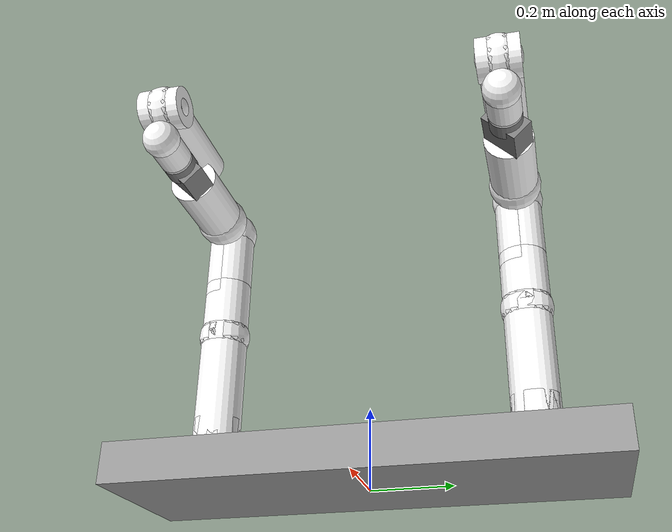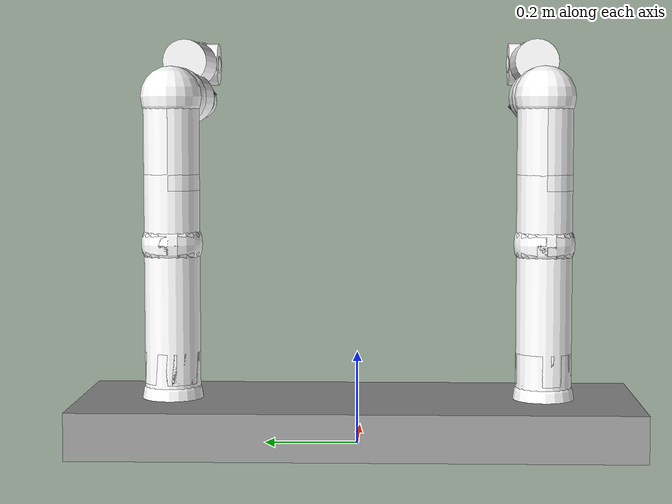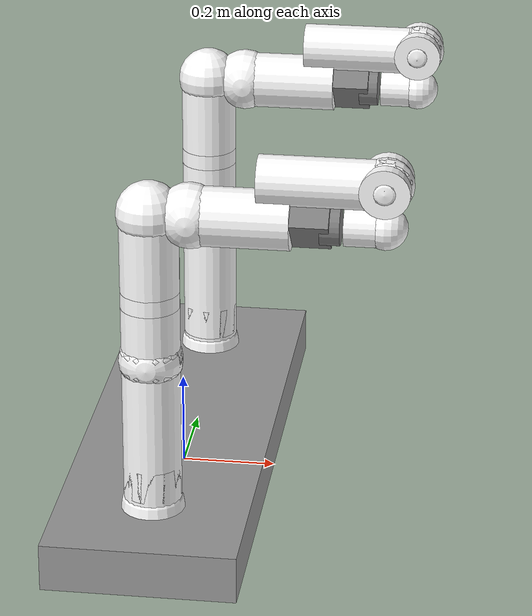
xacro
<?xml version="1.0" encoding="utf-8"?>
<robot xmlns:xacro="http://www.ros.org/wiki/xacro" name="dual_panda">

  <!-- 0. 基础宏定义 (物理修正版) -->
  <xacro:macro name="cylinder_inertial" params="radius length mass *origin">
    <inertial>
      <mass value="${mass}" />
      <xacro:insert_block name="origin" />
      <inertia ixx="${0.0833333 * mass * (3 * radius * radius + length * length)}" ixy="0.0" ixz="0.0"
               iyy="${0.0833333 * mass * (3 * radius * radius + length * length)}" iyz="0.0"
               izz="${0.5 * mass * radius * radius}" />
    </inertial>
  </xacro:macro>

  <xacro:macro name="box_inertial" params="x y z mass *origin">
    <inertial>
      <mass value="${mass}" />
      <xacro:insert_block name="origin" />
      <inertia ixx="${0.0833333 * mass * (y*y + z*z)}" ixy="0.0" ixz="0.0"
               iyy="${0.0833333 * mass * (x*x + z*z)}" iyz="0.0"
               izz="${0.0833333 * mass * (x*x + y*y)}" />
    </inertial>
  </xacro:macro>

  <!-- [新增] 球体惯性宏，用于关节球 -->
  <xacro:macro name="sphere_inertial" params="radius mass *origin">
    <inertial>
      <mass value="${mass}" />
      <xacro:insert_block name="origin" />
      <inertia ixx="${0.4 * mass * radius * radius}" ixy="0.0" ixz="0.0"
               iyy="${0.4 * mass * radius * radius}" iyz="0.0"
               izz="${0.4 * mass * radius * radius}" />
    </inertial>
  </xacro:macro>

  <!-- 视觉宏：包含圆柱体体身 + 关节处的球体 -->
  <xacro:macro name="visual_link_with_joint" params="radius length origin_xyz:='0 0 0' origin_rpy:='0 0 0'">
     <!-- Link 本体 (圆柱) -->
    <visual>
      <origin xyz="${origin_xyz}" rpy="${origin_rpy}"/>
      <geometry><cylinder radius="${radius}" length="${length}"/></geometry>
      <material name="White"><color rgba="1 1 1 1"/></material>
    </visual>
    <!-- 关节球 (补缝) -->
    <visual>
      <origin xyz="0 0 0" rpy="0 0 0"/>
      <geometry><sphere radius="${radius * 1.1}"/></geometry>
      <material name="White"/>
    </visual>
  </xacro:macro>

  <!-- [修正] 碰撞体宏：只保留圆柱，不包含关节球，防止运动卡死 -->
  <xacro:macro name="simple_collision" params="radius length origin_xyz:='0 0 0' origin_rpy:='0 0 0'">
    <collision>
      <origin xyz="${origin_xyz}" rpy="${origin_rpy}"/>
      <!-- 半径稍微缩小一点点，避免紧贴碰撞 -->
      <geometry><cylinder radius="${radius * 0.9}" length="${length}"/></geometry>
    </collision>
  </xacro:macro>

  <!-- 1. 机械臂宏 -->
  <xacro:macro name="panda_arm" params="arm_id connected_to xyz:='0 0 0' rpy:='0 0 0'">
    <!-- Base Link 固定关节 -->
    <joint name="${arm_id}_joint_base" type="fixed">
      <parent link="${connected_to}"/>
      <child link="${arm_id}_link0"/>
      <origin rpy="${rpy}" xyz="${xyz}"/>
    </joint>

    <link name="${arm_id}_link0">
      <xacro:visual_link_with_joint radius="0.06" length="0.1" origin_xyz="0 0 0.05" origin_rpy="0 0 0"/>
      <xacro:simple_collision radius="0.06" length="0.1" origin_xyz="0 0 0.05"/>
      <xacro:cylinder_inertial radius="0.06" length="0.1" mass="3.06"><origin xyz="0 0 0.05" rpy="0 0 0"/></xacro:cylinder_inertial>
    </link>
    <gazebo reference="${arm_id}_link0"><material>Gazebo/White</material></gazebo>

    <joint name="${arm_id}_joint1" type="revolute">
      <origin rpy="0 0 0" xyz="0 0 0.333"/> <parent link="${arm_id}_link0"/> <child link="${arm_id}_link1"/> <axis xyz="0 0 1"/>
      <limit effort="87" lower="-2.8973" upper="2.8973" velocity="2.1750"/> <dynamics damping="1.0" friction="0.5"/>
    </joint>
    <link name="${arm_id}_link1">
      <xacro:visual_link_with_joint radius="0.06" length="0.3" origin_xyz="0 0 -0.15"/>
      <xacro:simple_collision radius="0.06" length="0.3" origin_xyz="0 0 -0.15"/>
      <xacro:cylinder_inertial radius="0.06" length="0.3" mass="2.34"><origin xyz="0 0 -0.15" rpy="0 0 0"/></xacro:cylinder_inertial>
    </link>
    <gazebo reference="${arm_id}_link1"><material>Gazebo/White</material></gazebo>

    <joint name="${arm_id}_joint2" type="revolute">
      <origin rpy="${-pi/2} 0 0" xyz="0 0 0"/> <parent link="${arm_id}_link1"/> <child link="${arm_id}_link2"/> <axis xyz="0 0 1"/>
      <limit effort="87" lower="-1.7628" upper="1.7628" velocity="2.1750"/> <dynamics damping="1.0" friction="0.5"/>
    </joint>
    <link name="${arm_id}_link2">
      <xacro:visual_link_with_joint radius="0.06" length="0.35" origin_xyz="0 -0.15 0" origin_rpy="-1.57 0 0"/>
      <xacro:simple_collision radius="0.06" length="0.35" origin_xyz="0 -0.15 0" origin_rpy="-1.57 0 0"/>
      <xacro:cylinder_inertial radius="0.06" length="0.35" mass="2.36"><origin xyz="0 -0.15 0" rpy="-1.57 0 0"/></xacro:cylinder_inertial>
    </link>
    <gazebo reference="${arm_id}_link2"><material>Gazebo/White</material></gazebo>

    <joint name="${arm_id}_joint3" type="revolute">
      <origin rpy="${pi/2} 0 0" xyz="0 -0.316 0"/> <parent link="${arm_id}_link2"/> <child link="${arm_id}_link3"/> <axis xyz="0 0 1"/>
      <limit effort="87" lower="-2.8973" upper="2.8973" velocity="2.1750"/> <dynamics damping="1.0" friction="0.5"/>
    </joint>
    <link name="${arm_id}_link3">
       <xacro:visual_link_with_joint radius="0.06" length="0.2" origin_xyz="0 0 -0.1"/>
       <xacro:simple_collision radius="0.06" length="0.2" origin_xyz="0 0 -0.1"/>
      <xacro:cylinder_inertial radius="0.06" length="0.2" mass="2.38"><origin xyz="0 0 -0.1" rpy="0 0 0"/></xacro:cylinder_inertial>
    </link>
    <gazebo reference="${arm_id}_link3"><material>Gazebo/White</material></gazebo>

    <joint name="${arm_id}_joint4" type="revolute">
      <origin rpy="${pi/2} 0 0" xyz="0.0825 0 0"/> <parent link="${arm_id}_link3"/> <child link="${arm_id}_link4"/> <axis xyz="0 0 1"/>
      <limit effort="87" lower="-3.0718" upper="-0.0698" velocity="2.1750"/> <dynamics damping="1.0" friction="0.5"/>
    </joint>
    <link name="${arm_id}_link4">
       <xacro:visual_link_with_joint radius="0.06" length="0.2" origin_xyz="0 0.1 0" origin_rpy="1.57 0 0"/>
       <xacro:simple_collision radius="0.06" length="0.2" origin_xyz="0 0.1 0" origin_rpy="1.57 0 0"/>
      <xacro:cylinder_inertial radius="0.06" length="0.2" mass="2.43"><origin xyz="0 0 0" rpy="0 0 0"/></xacro:cylinder_inertial>
    </link>
    <gazebo reference="${arm_id}_link4"><material>Gazebo/White</material></gazebo>

    <joint name="${arm_id}_joint5" type="revolute">
      <origin rpy="${-pi/2} 0 0" xyz="-0.0825 0.384 0"/> <parent link="${arm_id}_link4"/> <child link="${arm_id}_link5"/> <axis xyz="0 0 1"/>
      <limit effort="12" lower="-2.8973" upper="2.8973" velocity="2.6100"/> <dynamics damping="1.0" friction="0.5"/>
    </joint>
    <link name="${arm_id}_link5">
       <xacro:visual_link_with_joint radius="0.05" length="0.25" origin_xyz="0 0 -0.125"/>
       <xacro:simple_collision radius="0.05" length="0.25" origin_xyz="0 0 -0.125"/>
      <xacro:cylinder_inertial radius="0.05" length="0.25" mass="3.5"><origin xyz="0 0 -0.125" rpy="0 0 0"/></xacro:cylinder_inertial>
    </link>
    <gazebo reference="${arm_id}_link5"><material>Gazebo/White</material></gazebo>

    <joint name="${arm_id}_joint6" type="revolute">
      <origin rpy="${pi/2} 0 0" xyz="0 0 0"/> <parent link="${arm_id}_link5"/> <child link="${arm_id}_link6"/> <axis xyz="0 0 1"/>
      <limit effort="12" lower="-0.0175" upper="3.7525" velocity="2.6100"/> <dynamics damping="0.5" friction="0.5"/>
    </joint>
    <link name="${arm_id}_link6">
       <xacro:visual_link_with_joint radius="0.05" length="0.1" origin_xyz="0 0 0"/>
       <xacro:simple_collision radius="0.05" length="0.1" origin_xyz="0 0 0"/>
      <xacro:cylinder_inertial radius="0.05" length="0.1" mass="1.47"><origin xyz="0 0 0" rpy="0 0 0"/></xacro:cylinder_inertial>
    </link>
    <gazebo reference="${arm_id}_link6"><material>Gazebo/White</material></gazebo>

    <joint name="${arm_id}_joint7" type="revolute">
      <origin rpy="${pi/2} 0 0" xyz="0.088 0 0"/> <parent link="${arm_id}_link6"/> <child link="${arm_id}_link7"/> <axis xyz="0 0 1"/>
      <limit effort="12" lower="-2.8973" upper="2.8973" velocity="2.6100"/> <dynamics damping="0.5" friction="0.5"/>
    </joint>
    <link name="${arm_id}_link7">
       <xacro:visual_link_with_joint radius="0.04" length="0.08" origin_xyz="0 0 0.04"/>
       <xacro:simple_collision radius="0.04" length="0.08" origin_xyz="0 0 0.04"/>
      <xacro:cylinder_inertial radius="0.04" length="0.08" mass="0.45"><origin xyz="0 0 0.04" rpy="0 0 0"/></xacro:cylinder_inertial>
    </link>
    <gazebo reference="${arm_id}_link7"><material>Gazebo/White</material></gazebo>

    <joint name="${arm_id}_joint8" type="fixed">
      <origin rpy="0 0 0" xyz="0 0 0.107"/> <parent link="${arm_id}_link7"/> <child link="${arm_id}_link8"/>
    </joint>
    <link name="${arm_id}_link8">
      <visual>
        <!-- 保持原点，不需要偏移，连接关节已经偏移过了 -->
        <geometry><cylinder radius="0.04" length="0.04"/></geometry>
        <material name="Grey"><color rgba="0.5 0.5 0.5 1"/></material>
      </visual>
      <collision>
          <geometry><cylinder radius="0.04" length="0.04"/></geometry>
      </collision>
      <xacro:cylinder_inertial radius="0.04" length="0.04" mass="0.1"><origin xyz="0 0 0" rpy="0 0 0"/></xacro:cylinder_inertial>
    </link>
    <gazebo reference="${arm_id}_link8"><material>Gazebo/Grey</material></gazebo>
  </xacro:macro>

  <!-- 2. 手部宏 (物理修正) -->
  <xacro:macro name="panda_hand" params="arm_id connected_to rpy:='0 0 0' xyz:='0 0 0'">
    <joint name="${arm_id}_hand_joint" type="fixed">
      <parent link="${connected_to}"/>
      <child link="${arm_id}_hand"/>
      <origin xyz="${xyz}" rpy="${rpy}"/>
    </joint>

    <link name="${arm_id}_hand">
      <visual>
          <origin xyz="0 0 0.04" rpy="0 0 0"/>
          <geometry><box size="0.1 0.06 0.08"/></geometry>
          <material name="Grey"><color rgba="0.5 0.5 0.5 1"/></material>
      </visual>
      <!-- [修正] 缩小 Collision 尺寸，防止与手指互相弹开 -->
      <collision>
        <origin xyz="0 0 0.04" rpy="0 0 0"/>
        <geometry><box size="0.08 0.05 0.06"/></geometry>
      </collision>
      <xacro:box_inertial x="0.1" y="0.1" z="0.1" mass="0.6"><origin xyz="0 0 0" rpy="0 0 0"/></xacro:box_inertial>
    </link>
    <gazebo reference="${arm_id}_hand"><material>Gazebo/Grey</material></gazebo>

    <link name="${arm_id}_leftfinger">
      <visual>
          <origin xyz="0 0.015 0.03" rpy="0 0 0"/>
          <geometry><box size="0.022 0.022 0.04"/></geometry>
          <material name="Grey"><color rgba="0.5 0.5 0.5 1"/></material>
      </visual>
      <!-- [修正] 缩小碰撞体，稍微远离中心 -->
      <collision><origin xyz="0 0.015 0.03" rpy="0 0 0"/><geometry><box size="0.015 0.015 0.03"/></geometry></collision>
      <xacro:box_inertial x="0.02" y="0.02" z="0.05" mass="0.1"><origin xyz="0 0 0" rpy="0 0 0"/></xacro:box_inertial>
    </link>
    <gazebo reference="${arm_id}_leftfinger"><material>Gazebo/Grey</material></gazebo>

    <joint name="${arm_id}_finger_joint1" type="prismatic">
      <parent link="${arm_id}_hand"/> <child link="${arm_id}_leftfinger"/> <origin xyz="0 0 0.0584" rpy="0 0 0"/> <axis xyz="0 1 0"/>
      <limit effort="20" lower="0.0" upper="0.04" velocity="0.2"/> <dynamics damping="0.1" friction="0.1"/>
    </joint>

    <link name="${arm_id}_rightfinger">
      <visual>
          <origin xyz="0 -0.015 0.03" rpy="0 0 0"/>
          <geometry><box size="0.022 0.022 0.04"/></geometry>
          <material name="Grey"><color rgba="0.5 0.5 0.5 1"/></material>
      </visual>
      <!-- [修正] 缩小碰撞体 -->
      <collision><origin xyz="0 -0.015 0.03" rpy="0 0 0"/><geometry><box size="0.015 0.015 0.03"/></geometry></collision>
      <xacro:box_inertial x="0.02" y="0.02" z="0.05" mass="0.1"><origin xyz="0 0 0" rpy="0 0 0"/></xacro:box_inertial>
    </link>
    <gazebo reference="${arm_id}_rightfinger"><material>Gazebo/Grey</material></gazebo>

    <joint name="${arm_id}_finger_joint2" type="prismatic">
      <parent link="${arm_id}_hand"/> <child link="${arm_id}_rightfinger"/> <origin xyz="0 0 0.0584" rpy="0 0 0"/> <axis xyz="0 -1 0"/>
      <limit effort="20" lower="0.0" upper="0.04" velocity="0.2"/> <dynamics damping="0.1" friction="0.1"/>
      <mimic joint="${arm_id}_finger_joint1" multiplier="1" offset="0"/>
    </joint>
  </xacro:macro>

  <!-- 3. 场景构建 -->
  <link name="world"/>
  <joint name="world_joint" type="fixed">
    <parent link="world"/>
    <child link="base_link"/>
    <origin xyz="0 0 0.05" rpy="0 0 0"/>
  </joint>

  <link name="base_link">
    <visual><geometry><box size="0.4 1.2 0.1"/></geometry><material name="Gray"><color rgba="0.6 0.6 0.6 1"/></material></visual>
    <collision><geometry><box size="0.4 1.2 0.1"/></geometry></collision>
    <xacro:box_inertial x="0.4" y="1.2" z="0.1" mass="100.0"><origin xyz="0 0 0" rpy="0 0 0"/></xacro:box_inertial>
  </link>
  <gazebo reference="base_link"> <material>Gazebo/Gray</material> </gazebo>

  <xacro:panda_arm arm_id="panda_1" connected_to="base_link" xyz="0 -0.4 0.05" rpy="0 0 0"/>
  <xacro:panda_hand arm_id="panda_1" connected_to="panda_1_link8" rpy="0 0 ${-pi/4}"/>
  <xacro:panda_arm arm_id="panda_2" connected_to="base_link" xyz="0 0.4 0.05" rpy="0 0 0"/>
  <xacro:panda_hand arm_id="panda_2" connected_to="panda_2_link8" rpy="0 0 ${-pi/4}"/>

  <!-- ROS2 Control (保持不变) -->
  <ros2_control name="GazeboSystem" type="system">
    <hardware><plugin>gazebo_ros2_control/GazeboSystem</plugin></hardware>
    <xacro:macro name="config_joint" params="name initial_pos">
        <joint name="${name}">
            <command_interface name="position"/>
            <state_interface name="position"><param name="initial_value">${initial_pos}</param></state_interface>
            <state_interface name="velocity"/>
        </joint>
    </xacro:macro>
    <xacro:config_joint name="panda_1_joint1" initial_pos="0.0"/>
    <xacro:config_joint name="panda_1_joint2" initial_pos="-0.785"/>
    <xacro:config_joint name="panda_1_joint3" initial_pos="0.0"/>
    <xacro:config_joint name="panda_1_joint4" initial_pos="-2.356"/>
    <xacro:config_joint name="panda_1_joint5" initial_pos="0.0"/>
    <xacro:config_joint name="panda_1_joint6" initial_pos="1.571"/>
    <xacro:config_joint name="panda_1_joint7" initial_pos="0.785"/>
    <xacro:config_joint name="panda_2_joint1" initial_pos="0.0"/>
    <xacro:config_joint name="panda_2_joint2" initial_pos="-0.785"/>
    <xacro:config_joint name="panda_2_joint3" initial_pos="0.0"/>
    <xacro:config_joint name="panda_2_joint4" initial_pos="-2.356"/>
    <xacro:config_joint name="panda_2_joint5" initial_pos="0.0"/>
    <xacro:config_joint name="panda_2_joint6" initial_pos="1.571"/>
    <xacro:config_joint name="panda_2_joint7" initial_pos="0.785"/>
    <xacro:config_joint name="panda_1_finger_joint1" initial_pos="0.0"/>
    <xacro:config_joint name="panda_2_finger_joint1" initial_pos="0.0"/>

    <!-- [关键修复] 为模仿关节（Mimic Joints）添加被动接口，防止 Gazebo 崩溃 -->
    <!-- 注意：不要给 mimic joint 添加 command_interface，但需要这一块占位符或者完全移除 ros2_control标签 -->
    <!-- 最佳实践：在 gazebo_ros2_control 中，mimic 关节通常不需要显式定义 command_interface -->
    <!-- 如果定义了，必须由 mimic 插件接管，或者通过 controller 驱动。这里我们在 URDF 层面让其被动。-->
  </ros2_control>

  <gazebo>
    <plugin filename="libgazebo_ros2_control.so" name="gazebo_ros2_control">
      <parameters>$(find dual_arm_moveit_config)/config/ros2_controllers.yaml</parameters>
      <!-- [关键修复] 显式告知插件处理 mimic 关节 -->
      <ros>
        <namespace>/</namespace>
      </ros>
    </plugin>
  </gazebo>
</robot>
